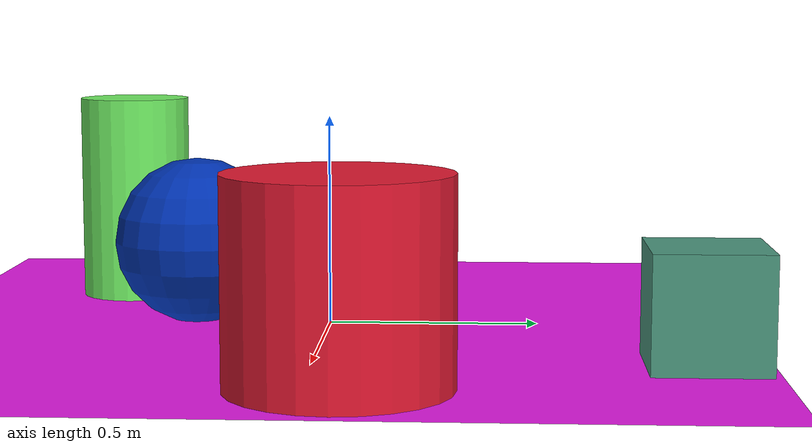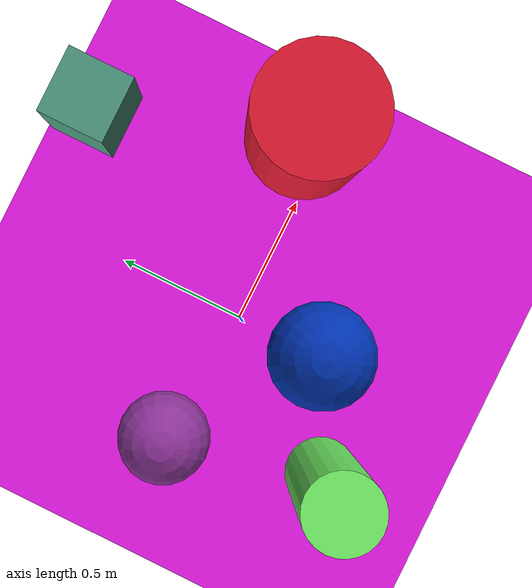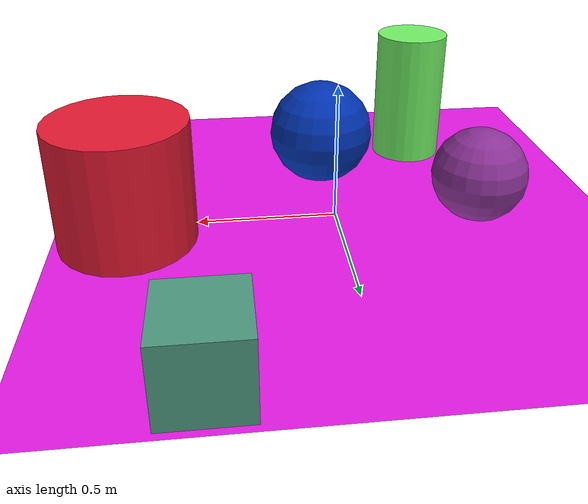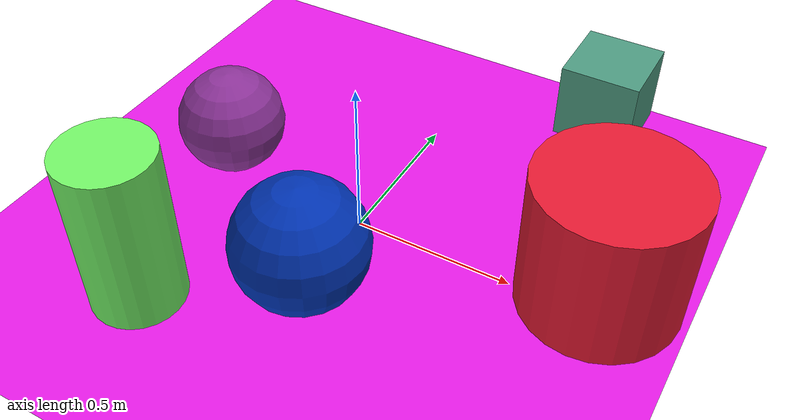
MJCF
<mujoco>
   <asset>
<texture type="skybox" builtin="gradient" rgb1="0.1 0.7 0.1" rgb2="1.0 0.1 0.2" width="256" height="256"/>
<texture name="flat_0" builtin="flat" rgb1="0.0 0.2 0.7" rgb2="0.0 0.2 0.7"  width="200" height="200"/>
<texture name="flat_1" builtin="flat" rgb1="0.9 0.1 0.2" rgb2="0.9 0.1 0.2"  width="200" height="200"/>
<texture name="checker_2" builtin="checker" type="2d" rgb1="0.8 0.2 0.7" rgb2="0.3 0.2 0.5" width="200" height="200"/>
<texture name="gradient_3" builtin="gradient" rgb1="0.2 0.6 0.9" rgb2="0.4 0.6 0.1" width="200" height="200"/>
<texture name="gradient_4" builtin="gradient" rgb1="0.4 0.9 0.3" rgb2="0.5 1.0 0.5" width="200" height="200"/><material name="flat_0_mat" reflectance="0" texture="flat_0" texuniform="true"/>
<material name="flat_1_mat" reflectance="0" texture="flat_1" texuniform="true"/>
<material name="checker_2_mat" reflectance="0" texrepeat="2 2" texture="checker_2" texuniform="false" />
<material name="gradient_3_mat" reflectance="0" texture="gradient_3" texuniform="true"/>
<material name="gradient_4_mat" reflectance="0" texture="gradient_4" texuniform="true"/>
   </asset>

   <worldbody>
      <light diffuse=".9 .9 .9" pos="0 0 3" dir="0 0 -1"/>
     <geom type="plane" size="1 1 0.1" rgba="0.9 0.1 0.9 1"/>
<geom type="sphere" pos="0.01 -0.32 0.2" size="0.2 0.2 0.2" material="flat_0_mat" />
<geom type="cylinder" pos="0.74 0.08 0.22" size="0.24 0.22 0.22" material="flat_1_mat" />
<geom type="sphere" pos="-0.51 0.06 0.17" size="0.17 0.17 0.17" material="checker_2_mat" />
<geom type="box" pos="0.47 0.85 0.13" size="0.13 0.13 0.13" material="gradient_3_mat" />
<geom type="cylinder" pos="-0.4 -0.55 0.26" size="0.14 0.26 0.26" material="gradient_4_mat" /><camera euler="60 0 180" fovy="60" name="camera_a" pos="0 -1.5 1"></camera>   </worldbody>
</mujoco>
